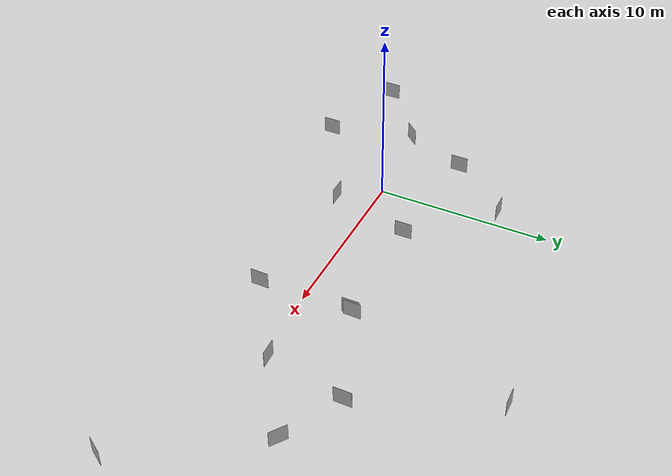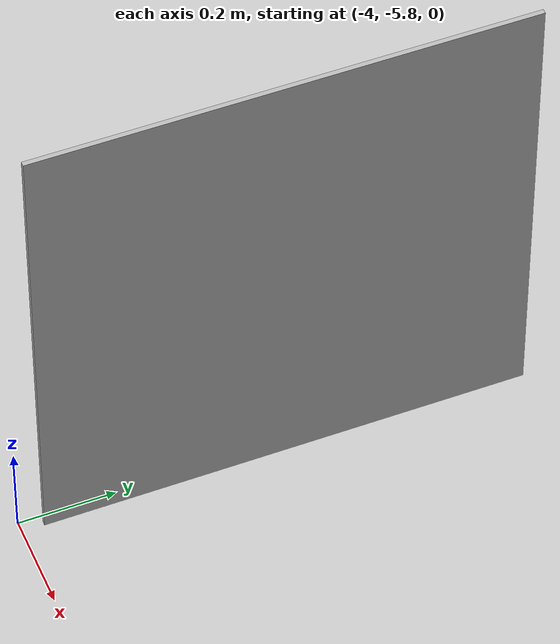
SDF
<sdf version="1.6">
 <world name="default">
  <light name="sun" type="directional">
   <pose>0 0 10 0 -0 0</pose>
   <diffuse>1 1 1 1</diffuse>
   <specular>0.2 0.2 0.2 1</specular>
   <attenuation>
    <range>1000</range>
    <constant>0.9</constant>
    <linear>0.01</linear>
    <quadratic>0.001</quadratic>
   </attenuation>
   <direction>-0.5 0.5 -1</direction>
  </light>
  <physics name="default_physics" default="0" type="ode">
   <max_step_size>0.001</max_step_size>
   <real_time_factor>1</real_time_factor>
   <real_time_update_rate>1000</real_time_update_rate>
  </physics>
  <scene>
   <ambient>1 1 1 1</ambient>
   <background>1 1 1 1</background>
   <shadows>1</shadows>
   <sky><clouds><speed>12</speed></clouds></sky>
  </scene>
  <spherical_coordinates>
   <surface_model>EARTH_WGS84</surface_model>
   <latitude_deg>43.5007</latitude_deg>
   <longitude_deg>-80.5468</longitude_deg>
   <elevation>329</elevation>
   <heading_deg>0</heading_deg>
  </spherical_coordinates>
  <gravity>0 0 -9.8</gravity>
  <magnetic_field>6e-06 2.3e-05 -4.2e-05</magnetic_field>
  <atmosphere type="adiabatic"/>
  <audio><device>default</device></audio>
  <model name="Apriltag36_11_00001">
   <link name="main">
    <pose>0 0 0.5 0 1.5707 0</pose>
    <visual name="main_Visual">
     <geometry><box><size>1 1 0.01</size></box></geometry>
     <material>
      <script>
       <uri>model://Apriltag36_11_00001/materials/scripts</uri>
       <uri>model://Apriltag36_11_00001/materials/textures</uri>
       <name>Apriltag36_11_00001</name>
      </script>
     </material>
    </visual>
   </link>
   <static>1</static>
   <pose>-3.78979 3.27337 0 0 -0 0</pose>
  </model>
  <model name="Apriltag36_11_00002">
   <link name="main">
    <pose>0 0 0.5 0 1.5707 0</pose>
    <visual name="main_Visual">
     <geometry><box><size>1 1 0.01</size></box></geometry>
     <material>
      <script>
       <uri>model://Apriltag36_11_00002/materials/scripts</uri>
       <uri>model://Apriltag36_11_00002/materials/textures</uri>
       <name>Apriltag36_11_00002</name>
      </script>
     </material>
    </visual>
   </link>
   <static>1</static>
   <pose>-0.849398 6.84137 0 0 0 -1.55511</pose>
  </model>
  <model name="Apriltag36_11_00003">
   <link name="main">
    <pose>0 0 0.5 0 1.5707 0</pose>
    <visual name="main_Visual">
     <geometry><box><size>1 1 0.01</size></box></geometry>
     <material>
      <script>
       <uri>model://Apriltag36_11_00003/materials/scripts</uri>
       <uri>model://Apriltag36_11_00003/materials/textures</uri>
       <name>Apriltag36_11_00003</name>
      </script>
     </material>
    </visual>
   </link>
   <static>1</static>
   <pose>-9.18982 -3.53098 0 0 -0 0</pose>
  </model>
  <model name="Apriltag36_11_00004">
   <link name="main">
    <pose>0 0 0.5 0 1.5707 0</pose>
    <visual name="main_Visual">
     <geometry><box><size>1 1 0.01</size></box></geometry>
     <material>
      <script>
       <uri>model://Apriltag36_11_00004/materials/scripts</uri>
       <uri>model://Apriltag36_11_00004/materials/textures</uri>
       <name>Apriltag36_11_00004</name>
      </script>
     </material>
    </visual>
   </link>
   <static>1</static>
   <pose>-3.98141 -5.25457 0 0 -0 0</pose>
  </model>
  <model name="Apriltag36_11_00005">
   <link name="main">
    <pose>0 0 0.5 0 1.5707 0</pose>
    <visual name="main_Visual">
     <geometry><box><size>1 1 0.01</size></box></geometry>
     <material>
      <script>
       <uri>model://Apriltag36_11_00005/materials/scripts</uri>
       <uri>model://Apriltag36_11_00005/materials/textures</uri>
       <name>Apriltag36_11_00005</name>
      </script>
     </material>
    </visual>
   </link>
   <static>1</static>
   <pose>3.15087 2.7088 0 0 -0 0</pose>
  </model>
  <model name="Apriltag36_11_00006">
   <link name="main">
    <pose>0 0 0.5 0 1.5707 0</pose>
    <visual name="main_Visual">
     <geometry><box><size>1 1 0.01</size></box></geometry>
     <material>
      <script>
       <uri>model://Apriltag36_11_00006/materials/scripts</uri>
       <uri>model://Apriltag36_11_00006/materials/textures</uri>
       <name>Apriltag36_11_00006</name>
      </script>
     </material>
    </visual>
   </link>
   <static>1</static>
   <pose>1.78521 -2.0538 0 0 0 -1.56743</pose>
  </model>
  <model name="Apriltag36_11_00007">
   <link name="main">
    <pose>0 0 0.5 0 1.5707 0</pose>
    <visual name="main_Visual">
     <geometry><box><size>1 1 0.01</size></box></geometry>
     <material>
      <script>
       <uri>model://Apriltag36_11_00007/materials/scripts</uri>
       <uri>model://Apriltag36_11_00007/materials/textures</uri>
       <name>Apriltag36_11_00007</name>
      </script>
     </material>
    </visual>
   </link>
   <static>1</static>
   <pose>23.1295 -3.57551 0 0 0 -0.565125</pose>
  </model>
  <model name="Apriltag36_11_00008">
   <link name="main">
    <pose>0 0 0.5 0 1.5707 0</pose>
    <visual name="main_Visual">
     <geometry><box><size>1 1 0.01</size></box></geometry>
     <material>
      <script>
       <uri>model://Apriltag36_11_00008/materials/scripts</uri>
       <uri>model://Apriltag36_11_00008/materials/textures</uri>
       <name>Apriltag36_11_00008</name>
      </script>
     </material>
    </visual>
   </link>
   <static>1</static>
   <pose>15.454 5.0377 0 0 -0 0</pose>
  </model>
  <model name="Apriltag36_11_00009">
   <link name="main">
    <pose>0 0 0.5 0 1.5707 0</pose>
    <visual name="main_Visual">
     <geometry><box><size>1 1 0.01</size></box></geometry>
     <material>
      <script>
       <uri>model://Apriltag36_11_00009/materials/scripts</uri>
       <uri>model://Apriltag36_11_00009/materials/textures</uri>
       <name>Apriltag36_11_00009</name>
      </script>
     </material>
    </visual>
   </link>
   <static>1</static>
   <pose>9.99214 2.88366 0 0 -0 0</pose>
  </model>
  <model name="Apriltag36_11_00010">
   <link name="main">
    <pose>0 0 0.5 0 1.5707 0</pose>
    <visual name="main_Visual">
     <geometry><box><size>1 1 0.01</size></box></geometry>
     <material>
      <script>
       <uri>model://Apriltag36_11_00010/materials/scripts</uri>
       <uri>model://Apriltag36_11_00010/materials/textures</uri>
       <name>Apriltag36_11_00010</name>
      </script>
     </material>
    </visual>
   </link>
   <static>1</static>
   <pose>14.5366 0.523454 0 0 0 -1.52939</pose>
  </model>
  <model name="Apriltag36_11_00011">
   <link name="main">
    <pose>0 0 0.5 0 1.5707 0</pose>
    <visual name="main_Visual">
     <geometry><box><size>1 1 0.01</size></box></geometry>
     <material>
      <script>
       <uri>model://Apriltag36_11_00011/materials/scripts</uri>
       <uri>model://Apriltag36_11_00011/materials/textures</uri>
       <name>Apriltag36_11_00011</name>
      </script>
     </material>
    </visual>
   </link>
   <static>1</static>
   <pose>-5.33605 -0.461352 0 0 0 -0.724286</pose>
  </model>
  <model name="Apriltag36_11_00012">
   <link name="main">
    <pose>0 0 0.5 0 1.5707 0</pose>
    <visual name="main_Visual">
     <geometry><box><size>1 1 0.01</size></box></geometry>
     <material>
      <script>
       <uri>model://Apriltag36_11_00012/materials/scripts</uri>
       <uri>model://Apriltag36_11_00012/materials/textures</uri>
       <name>Apriltag36_11_00012</name>
      </script>
     </material>
    </visual>
   </link>
   <static>1</static>
   <pose>9.87005 2.7314 0 0 -0 0</pose>
  </model>
  <model name="Apriltag36_11_00013">
   <link name="main">
    <pose>0 0 0.5 0 1.5707 0</pose>
    <visual name="main_Visual">
     <geometry><box><size>1 1 0.01</size></box></geometry>
     <material>
      <script>
       <uri>model://Apriltag36_11_00013/materials/scripts</uri>
       <uri>model://Apriltag36_11_00013/materials/textures</uri>
       <name>Apriltag36_11_00013</name>
      </script>
     </material>
    </visual>
   </link>
   <static>1</static>
   <pose>10.0306 -2.50513 0 0 -0 0</pose>
  </model>
  <model name="Apriltag36_11_00014">
   <link name="main">
    <pose>0 0 0.5 0 1.5707 0</pose>
    <visual name="main_Visual">
     <geometry><box><size>1 1 0.01</size></box></geometry>
     <material>
      <script>
       <uri>model://Apriltag36_11_00014/materials/scripts</uri>
       <uri>model://Apriltag36_11_00014/materials/textures</uri>
       <name>Apriltag36_11_00014</name>
      </script>
     </material>
    </visual>
   </link>
   <static>1</static>
   <pose>12.3202 12.2389 0 0 0 -1.54331</pose>
  </model>
  <model name="Apriltag36_11_00015">
   <link name="main">
    <pose>0 0 0.5 0 1.5707 0</pose>
    <visual name="main_Visual">
     <geometry><box><size>1 1 0.01</size></box></geometry>
     <material>
      <script>
       <uri>model://Apriltag36_11_00015/materials/scripts</uri>
       <uri>model://Apriltag36_11_00015/materials/textures</uri>
       <name>Apriltag36_11_00015</name>
      </script>
     </material>
    </visual>
   </link>
   <static>1</static>
   <pose>18.7875 3.41365 0 0 -0 0.948816</pose>
  </model>
 </world>
</sdf>
